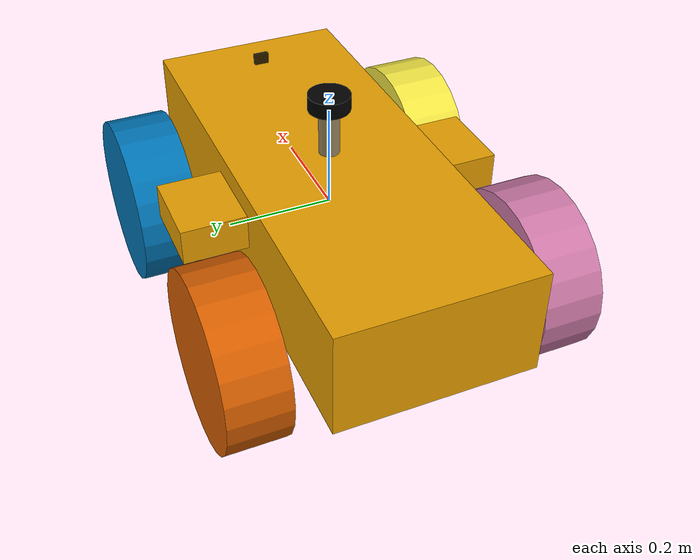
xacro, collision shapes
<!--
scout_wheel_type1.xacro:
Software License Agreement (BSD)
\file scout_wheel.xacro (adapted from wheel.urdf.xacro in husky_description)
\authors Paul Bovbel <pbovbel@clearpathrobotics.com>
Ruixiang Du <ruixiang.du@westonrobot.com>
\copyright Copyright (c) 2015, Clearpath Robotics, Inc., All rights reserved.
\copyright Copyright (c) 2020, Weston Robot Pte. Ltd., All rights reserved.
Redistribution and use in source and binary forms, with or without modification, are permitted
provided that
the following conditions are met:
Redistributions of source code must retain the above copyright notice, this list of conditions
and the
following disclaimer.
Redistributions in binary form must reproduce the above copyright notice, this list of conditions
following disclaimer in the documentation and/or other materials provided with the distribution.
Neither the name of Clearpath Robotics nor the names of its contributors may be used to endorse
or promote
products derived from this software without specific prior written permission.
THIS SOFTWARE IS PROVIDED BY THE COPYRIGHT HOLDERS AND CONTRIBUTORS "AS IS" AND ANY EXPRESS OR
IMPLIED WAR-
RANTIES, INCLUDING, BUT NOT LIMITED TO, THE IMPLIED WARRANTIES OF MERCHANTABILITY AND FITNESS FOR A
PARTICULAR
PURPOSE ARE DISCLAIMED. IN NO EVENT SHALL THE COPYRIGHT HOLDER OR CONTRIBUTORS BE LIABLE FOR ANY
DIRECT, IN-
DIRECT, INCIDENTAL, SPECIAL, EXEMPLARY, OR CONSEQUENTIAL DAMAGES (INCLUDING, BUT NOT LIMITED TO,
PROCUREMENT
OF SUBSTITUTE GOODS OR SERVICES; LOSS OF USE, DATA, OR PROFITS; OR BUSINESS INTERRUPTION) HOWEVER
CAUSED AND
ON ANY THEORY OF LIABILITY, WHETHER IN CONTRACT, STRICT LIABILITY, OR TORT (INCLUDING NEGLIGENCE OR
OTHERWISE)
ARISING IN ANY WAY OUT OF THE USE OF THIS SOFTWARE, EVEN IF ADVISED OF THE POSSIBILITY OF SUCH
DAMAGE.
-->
<robot name="scout" xmlns:xacro="http://ros.org/wiki/xacro">

    <!-- macro for inertial matrix -->
    <xacro:include filename="macro_inertial.xacro" />
    <!-- base -->
    <xacro:include filename="scout_base.xacro" />
    <xacro:include filename="gazebo/driving_control.xacro" />
    <!-- camera -->
    <xacro:include filename="scout_camera.xacro" />
    <xacro:include filename="gazebo/camera_sensor.xacro" />
    <!-- laser -->
    <xacro:include filename="scout_laser.xacro" />
    <xacro:include filename="gazebo/laser_sensor.xacro" />

</robot>

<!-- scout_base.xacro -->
<robot name="scout_v2"
    xmlns:xacro="http://ros.org/wiki/xacro">

    <xacro:arg name="robot_namespace" default="/" />

    <xacro:include filename="$(find scout01_robot_description)/urdf/scout_wheel_type1.xacro" />
    <xacro:include filename="$(find scout01_robot_description)/urdf/scout_wheel_type2.xacro" />

    <!-- Variables -->
    <xacro:property name="M_PI" value="3.1415926535897931" />

    <!-- Vehicle Geometries -->
    <xacro:property name="base_x_size" value="0.9250000" />
    <xacro:property name="base_y_size" value="0.380000" />
    <xacro:property name="base_z_size" value="0.210000" />

    <xacro:property name="wheelbase" value="0.498" />
    <xacro:property name="track" value="0.58306" />
    <xacro:property name="wheel_vertical_offset" value="-0.0702" />

    <xacro:property name="wheel_length" value="1.1653e-01" />
    <xacro:property name="wheel_radius" value="1.6459e-01" />

    <!-- Base link -->
    <link name="base_link">
        <visual>
            <origin xyz="0 0 0" rpy="0 0 0" />
            <geometry>
                <mesh filename="package://scout01_robot_description/meshes/base_link.dae" />
            </geometry>
        </visual>
        <collision>
            <origin xyz="0 0 0.008" rpy="0 0 0" />
            <geometry>
                <box size="${base_x_size} ${base_y_size} ${base_z_size}" />
            </geometry>
        </collision>
        <collision>
            <origin xyz="0 0 ${base_z_size/6}" rpy="0 0 0" />
            <geometry>
                <box size="${base_x_size/6} ${base_y_size*1.65} ${base_z_size/3}" />
            </geometry>
        </collision>
    </link>
    <!-- base_footprint -->
    <link name="base_footprint" />

    <joint name="base_footprint_joint" type="fixed">
        <origin xyz="0 0 ${wheel_vertical_offset - wheel_radius}" rpy="0 0 0" />
        <parent link="base_link" />
        <child link="base_footprint" />
    </joint>

    <link name="inertial_link">
        <inertial>
            <mass value="40" />
            <origin xyz="0.0 0.0 0.0" />
            <inertia ixx="2.288641" ixy="0" ixz="0" iyy="5.103976" iyz="0" izz="3.431465" />
        </inertial>
    </link>

    <joint name="inertial_joint" type="fixed">
        <origin xyz="0 0 0" rpy="0 0 0" />
        <parent link="base_link" />
        <child link="inertial_link" />
    </joint>

    <!-- Scout wheel macros -->
    <!-- wheel labeled from 0 to 3, conter-clockwise, starting from front right wheel -->
    <!-- motor 1 and 2 (left side) are mechanically installed in a reversed direction -->
    <xacro:scout_wheel_type1 wheel_prefix="front_right">
        <origin xyz="${wheelbase/2} ${-track/2} ${wheel_vertical_offset}" rpy="3.14 0 0" />
    </xacro:scout_wheel_type1>
    <xacro:scout_wheel_type2 wheel_prefix="front_left">
        <origin xyz="${wheelbase/2} ${track/2} ${wheel_vertical_offset}" rpy="0 0 0" />
    </xacro:scout_wheel_type2>
    <xacro:scout_wheel_type1 wheel_prefix="rear_left">
        <origin xyz="${-wheelbase/2} ${track/2} ${wheel_vertical_offset}" rpy="0 0 0" />
    </xacro:scout_wheel_type1>
    <xacro:scout_wheel_type2 wheel_prefix="rear_right">
        <origin xyz="${-wheelbase/2} ${-track/2} ${wheel_vertical_offset}" rpy="3.14 0 0" />
    </xacro:scout_wheel_type2>

    <!-- Fake localization plugin -->
    <!-- initialize odometry for fake localization-->

</robot>

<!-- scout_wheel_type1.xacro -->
<robot xmlns:xacro="http://ros.org/wiki/xacro" name="scout_wheel">

    <xacro:macro name="scout_wheel_type1" params="wheel_prefix *joint_pose">
        <link name="${wheel_prefix}_wheel_link">
            <inertial>
                <mass value="3" />
                <origin xyz="0 0 0" />
                <inertia ixx="0.7171" ixy="0" ixz="0" iyy="0.1361" iyz="0" izz="0.7171" />
            </inertial>
            <visual>
                <origin xyz="0 0 0" rpy="0 0 0" />
                <geometry>
                    <mesh filename="package://scout01_robot_description/meshes/wheel_type1.dae" />
                </geometry>
            </visual>
            <collision>
                <origin xyz="0 0 0" rpy="${M_PI/2} 0 0" />
                <geometry>
                    <cylinder length="${wheel_length}" radius="${wheel_radius}" />
                </geometry>
            </collision>
        </link>

        <joint name="${wheel_prefix}_wheel" type="continuous">
            <parent link="base_link" />
            <child link="${wheel_prefix}_wheel_link" />
            <xacro:insert_block name="joint_pose" />
            <axis xyz="0 -1 0" rpy="0 0 0" />
        </joint>
    </xacro:macro>

</robot>

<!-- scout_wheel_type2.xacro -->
<robot xmlns:xacro="http://ros.org/wiki/xacro" name="scout_wheel">

    <xacro:macro name="scout_wheel_type2" params="wheel_prefix *joint_pose">
        <link name="${wheel_prefix}_wheel_link">
            <inertial>
                <mass value="3" />
                <origin xyz="0 0 0" />
                <inertia ixx="0.7171" ixy="0" ixz="0" iyy="0.1361" iyz="0" izz="0.7171" />
            </inertial>
            <visual>
                <origin xyz="0 0 0" rpy="0 0 0" />
                <geometry>
                    <mesh filename="package://scout01_robot_description/meshes/wheel_type2.dae" />
                </geometry>
            </visual>
            <collision>
                <origin xyz="0 0 0" rpy="${M_PI/2} 0 0" />
                <geometry>
                    <cylinder length="${wheel_length}" radius="${wheel_radius}" />
                </geometry>
            </collision>
        </link>

        <joint name="${wheel_prefix}_wheel" type="continuous">
            <parent link="base_link" />
            <child link="${wheel_prefix}_wheel_link" />
            <xacro:insert_block name="joint_pose" />
            <axis xyz="0 -1 0" rpy="0 0 0" />
        </joint>
    </xacro:macro>

</robot>

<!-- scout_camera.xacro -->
<robot name="my_car" xmlns:xacro="http://wiki.ros.org/xacro">

    <xacro:property name="camera_length" value="0.01" />
    <xacro:property name="camera_width" value="0.03" />
    <xacro:property name="camera_height" value="0.03" />
    <xacro:property name="camera_mass" value="0.02" />
    <xacro:property name="joint_origin_x" value="0.37" />
    <xacro:property name="joint_origin_y" value="0" />
    <xacro:property name="joint_origin_z" value="${base_z_size / 2 + camera_height / 2}" />

    <link name="camera_link">
        <visual>
            <geometry>
                <box size="${camera_length} ${camera_width} ${camera_height}" />
            </geometry>
            <origin xyz="0 0 0" rpy="0 0 0" />
            <material name="black">
                <color rgba="0 0 0 0.8" />
            </material>
        </visual>
        <collision>
                <geometry>
                <box size="${camera_length} ${camera_width} ${camera_height}" />
            </geometry>
            <origin xyz="0 0 0" rpy="0 0 0" />
            </collision>
            <xacro:Box_inertial_matrix m="${camera_mass}" l="${camera_length}" w="${camera_width}" h="${camera_height}" />
    </link>
    <gazebo reference="camera_link">
        <material>Gazebo/Black</material>
    </gazebo>
    <!-- joint:base_link and camera_link -->
    <joint name="baselink_cameralink" type="fixed" >
        <parent link="base_link" />
        <child link="camera_link" />
        <origin xyz="${joint_origin_x} ${joint_origin_y} ${joint_origin_z}" rpy="0 0 0" />
    </joint>

</robot>

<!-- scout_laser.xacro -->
<robot name="my_car" xmlns:xacro="http://wiki.ros.org/xacro">

    <xacro:property name="support_radius" value="0.02" />
    <xacro:property name="support_length" value="0.1" />
    <xacro:property name="support_mass" value="0.1" />
    <xacro:property name="laser_radius" value="0.04" />
    <xacro:property name="laser_length" value="0.03" />
    <xacro:property name="laser_mass" value="0.05" />

    <xacro:property name="support_joint_x" value="0" />
    <xacro:property name="support_joint_y" value="0" />
    <xacro:property name="support_joint_z" value="${base_z_size / 2 + support_length / 2}" />
    <xacro:property name="laser_joint_x" value="0" />
    <xacro:property name="laser_joint_y" value="0" />
    <xacro:property name="laser_joint_z" value="${support_length / 2 + laser_length / 2}" />

    <link name="support">
            <visual>
                <geometry>
                    <cylinder radius="${support_radius}" length="${support_length}" />
                </geometry>
                <origin xyz="0 0 0" rpy="0 0 0" />
                <material name="grey">
                    <color rgba="0.5 0.5 0.5 0.8" />
                </material>
            </visual>
            <collision>
                <geometry>
                    <cylinder radius="${support_radius}" length="${support_length}" />
                </geometry>
                <origin xyz="0 0 0" rpy="0 0 0" />
            </collision>
            <xacro:cylinder_inertial_matrix m="${support_mass}" r="${support_radius}" h="${support_length}" />
        </link>

        <!-- joint:base_link and support -->
        <joint name="support_baselink" type="fixed" >
            <parent link="base_link" />
            <child link="support" />
            <origin xyz="${support_joint_x} ${support_joint_y} ${support_joint_z}" rpy="0 0 0" />
            <axis xyz="0 1 0" />
        </joint>

    <link name="laser">
            <visual>
                <geometry>
                    <cylinder radius="${laser_radius}" length="${laser_length}" />
                </geometry>
                <origin xyz="0 0 0" rpy="0 0 0" />
                <material name="black">
                    <color rgba="0 0 0 1" />
                </material>
            </visual>
            <collision>
                <geometry>
                    <cylinder radius="${laser_radius}" length="${laser_length}" />
                </geometry>
                <origin xyz="0 0 0" rpy="0 0 0" />
            </collision>
            <xacro:cylinder_inertial_matrix m="${laser_mass}" r="${laser_radius}" h="${laser_length}" />
        </link>

        <!-- joint:laser and support -->
        <joint name="laser_support" type="fixed" >
            <parent link="support" />
            <child link="laser" />
            <origin xyz="${laser_joint_x} ${laser_joint_y} ${laser_joint_z}" rpy="0 0 0" />
            <axis xyz="0 1 0" />
        </joint>

</robot>
